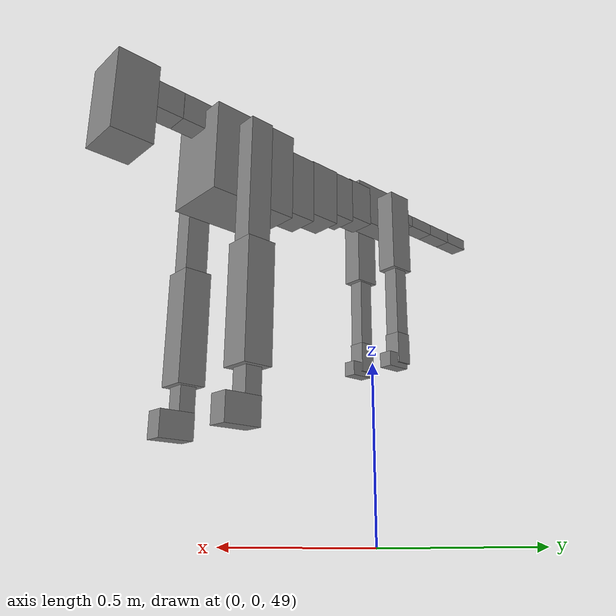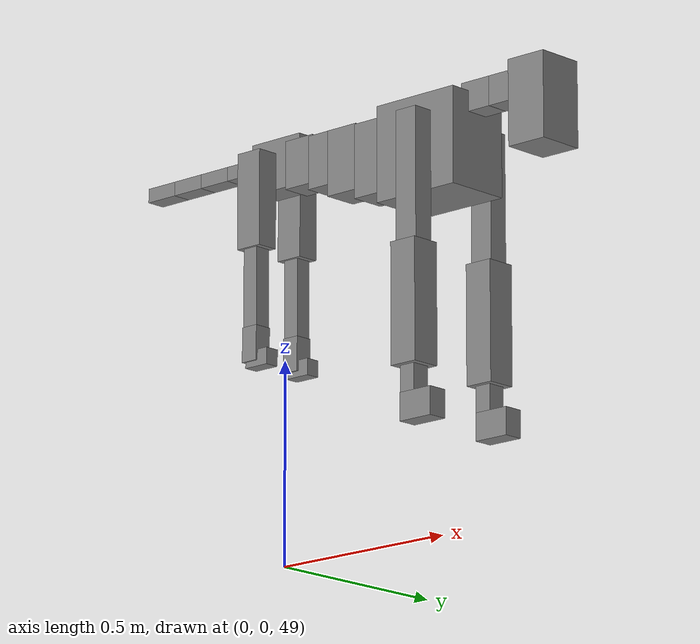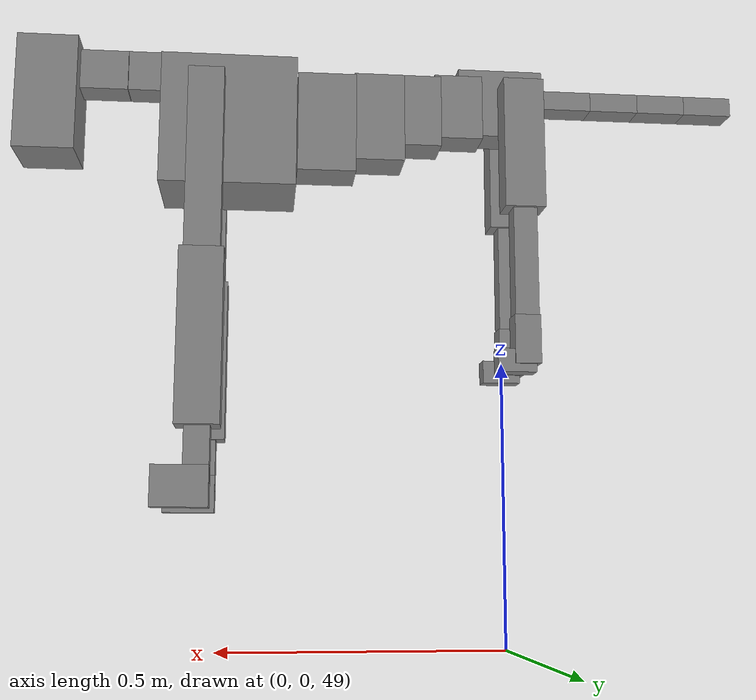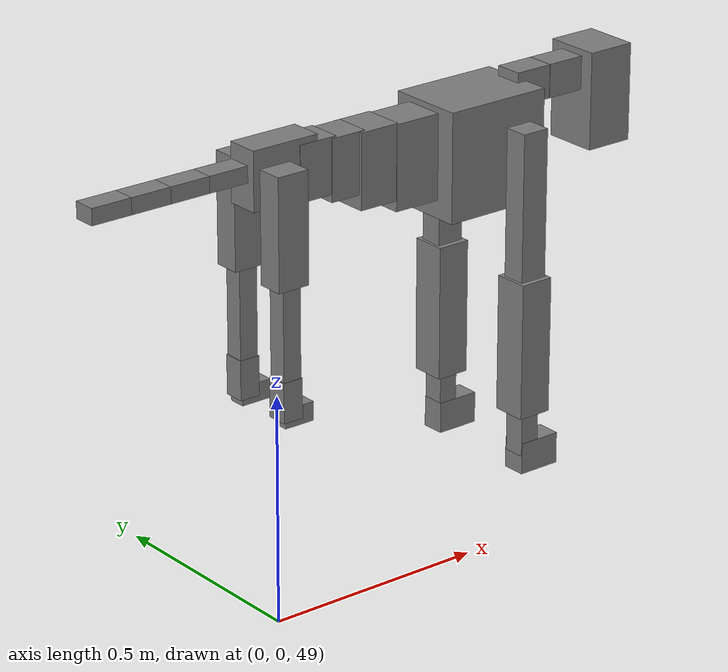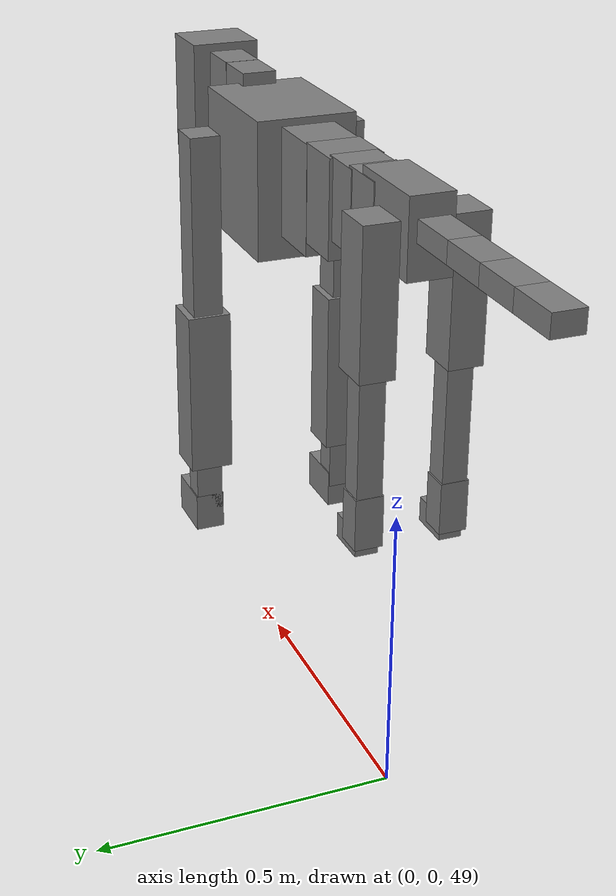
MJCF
<mujoco model="dog">

    <default>
        <joint armature="0.02" stiffness="1" damping="0.2" limited="true"/>
        <geom condim="3" friction="1 0.05 0.05" margin="0.01"/>
        <motor ctrllimited="true" ctrlrange="-1.0 1.0" forcelimited="true" gear="50"/>
    </default>

    <compiler inertiafromgeom="true" angle="radian"/>

    <option timestep="0.016" iterations="50" tolerance="1e-10" solver="Newton" jacobian="dense" cone="pyramidal"/>

    <size nconmax="20000" njmax="60000" nstack="5000000"/>
    <visual>
        <map force="0.1" zfar="30"/>
        <rgba haze="0.15 0.25 0.35 1"/>
        <quality shadowsize="2048"/>
        <global offwidth="800" offheight="800"/>
    </visual>

    <asset>
        <texture type="skybox" builtin="gradient" rgb1="0.3 0.5 0.7" rgb2="0 0 0" width="512" height="512"/>
        <texture name="texplane" type="2d" builtin="checker" rgb1=".2 .3 .4" rgb2=".1 0.15 0.2" width="512" height="512"
                 mark="cross" markrgb=".8 .8 .8"/>
        <texture name="texgeom" type="cube" builtin="flat" mark="cross" width="127" height="1278" rgb1="0.8 0.6 0.4"
                 rgb2="0.8 0.6 0.4" markrgb="1 1 1" random="0.01"/>

        <material name="matplane" reflectance="0.3" texture="texplane" texrepeat="1 1" texuniform="true"/>
        <material name="matgeom" texture="texgeom" texuniform="true" rgba="0.8 0.6 .4 1"/>
    </asset>

    <worldbody>
        <geom name="floor" pos="0 0 0" size="0 0 .25" type="plane" material="matplane" condim="3"/>

        <light directional="false" diffuse=".2 .2 .2" specular="0 0 0" pos="0 0 5" dir="0 0 -1" castshadow="false"/>
        <light mode="targetbodycom" target="torso" directional="false" diffuse=".8 .8 .8" specular="0.3 0.3 0.3"
               pos="0 0 4.0" dir="0 0 -1"/>

        <body name="root" pos="0 0 50">
            <freejoint name="root_1"/>
            <geom type="box" pos="0 0 -0.02" size="0.0774  0.0358  0.063" density="2030"/>

            <body name="spine1" pos="0.054 0 0">
                <joint name="spine1_y" axis="0 1 0" range="0 0.7" limited="true"/>
                <geom type="box" pos="0.02375 0 -0.03" size="0.04375  0.0375  0.05985" density="2030"/>

                <body name="spine2" pos="0.0612 0 0">
                    <joint name="spine2_y" axis="0 1 0" range="-0.15 0.15" limited="true"/>
                    <geom type="box" pos="0.03555  0  -0.04" size="0.04055  0.039  0.06615" density="2030"/>

                    <body name="spine3" pos="0.0730 0 0">
                        <joint name="spine3_y" axis="0 1 0" range="-0.15 0.15" limited="true"/>
                        <geom type="box" pos="0.03555  0  -0.057" size="0.04555  0.0445  0.081" density="2030"/>

                        <body name="spine4" pos="0.0780 0 0">
                            <joint name="spine4_y" axis="0 1 0" range="-0.15 0.15" limited="true"/>
                            <geom type="box" pos="0.05265  0  -0.07" size="0.05265  0.045  0.09135" density="2030"/>

                            <body name="torso" pos="0.1082 0 0">
                                <joint name="torso_y" axis="0 1 0" range="-0.15 0.15" limited="true"/>
                                <geom type="box" pos="0.11925  0  -0.085" size="0.11925  0.085  0.11745"
                                      density="2030"/>

                                <body name="neck1" pos="0.2160  0   0.0180">
                                    <joint name="neck1_y" axis="0 1 0" range="-1.2  -1" limited="true"/>
                                    <geom type="box" pos="0.0423  0  0" size="0.0423  0.03  0.036" density="2325"/>

                                    <body name="neck2" pos="0.0853  0  0">
                                        <joint name="neck2_y" axis="0 1 0" range="0.1  0" limited="true"/>
                                        <geom type="box" pos="0.0423  0  0" size="0.0423  0.03  0.036" density="2325"/>

                                        <body name="head" pos="0.0853  0  0">
                                            <joint name="head_y" axis="0 1 0" range="-0.3  -0.2" limited="true"/>
                                            <geom type="box" pos="0.0531  0  -0.055" size="0.0531  0.06  0.1044"
                                                  density="4030"/>

                                        </body>
                                    </body>
                                </body>

                                <body name="front_shoulder" pos="0.156  0   -0.0480">
                                    <joint name="front_shoulder_y" axis="0 1 0" range="-1 1.5" limited="true"/>
                                    <geom type="box" pos="0 0.13 -0.1449" size="0.0305  0.0261  0.1716" density="1158"/>
                                    <geom type="box" pos="0 -0.13 -0.1449" size="0.0305  0.0261  0.1716"
                                          density="1158"/>

                                    <body name="front_elbow" pos="0  0  -0.2899">
                                        <joint name="front_elbow_y" axis="0 1 0" range="-2 0" limited="true"/>
                                        <geom type="box" pos="0 0.13 -0.1467" size="0.0371  0.0379  0.1467"
                                              density="1081"/>
                                        <geom type="box" pos="0 -0.13 -0.1467" size="0.0371  0.0379  0.1467"
                                              density="1081"/>

                                        <body name="front_wrist" pos="0  0  -0.2935">
                                            <joint name="front_wrist_y" axis="0 1 0" range="-0.2 0" limited="true"/>
                                            <geom type="box" pos="0 0.13 -0.0392" size="0.0213  0.0237  0.0523"
                                                  density="1664"/>
                                            <geom type="box" pos="0 -0.13 -0.0392" size="0.0213  0.0237  0.0523"
                                                  density="1664"/>

                                            <body name="front_finger_end" pos="0  0  -0.0784">
                                                <joint name="front_finger_y" axis="0 1 0" range="-0.4 1"
                                                       limited="true"/>
                                                <geom type="box" pos="0.0255  0.13  -0.0188"
                                                      size="0.0468  0.0255  0.0338" density="1515"/>
                                                <geom type="box" pos="0.0255  -0.13  -0.0188"
                                                      size="0.0468  0.0255  0.0338" density="1515"/>

                                            </body>

                                        </body>
                                    </body>
                                </body>

                            </body>
                        </body>
                    </body>
                </body>
            </body>

            <body name="back_hip" pos="-0.03 0 -0.018">
                <joint name="back_hip_y" axis="0 1 0" range="-1.5 0.3" limited="true"/>
                <geom type="box" pos="0 0.07 -0.0961" size="0.0362  0.0284  0.1189" density="1154"/>
                <geom type="box" pos="0 -0.07 -0.0961" size="0.0362  0.0284  0.1189" density="1154"/>

                <body name="back_knee" pos="0  0  -0.1922">
                    <joint name="back_knee_y" axis="0 1 0" range="0 2.8" limited="true"/>
                    <geom type="box" pos="0 0.07 -0.1137" size="0.0211  0.0208  0.1292" density="1227"/>
                    <geom type="box" pos="0 -0.07 -0.1137" size="0.0211  0.0208  0.1292" density="1227"/>

                    <body name="back_ankle" pos="0  0  -0.2274">
                        <joint name="back_ankle_y" axis="0 1 0" range="-2.2 0" limited="true"/>
                        <geom type="box" pos="0 0.07 -0.0316" size="0.0229  0.0229  0.0429" density="1284"/>
                        <geom type="box" pos="0 -0.07 -0.0316" size="0.0229  0.0229  0.0429" density="1284"/>

                        <body name="back_toe_end" pos="0  0  -0.0633">
                            <joint name="back_toe_y" axis="0 1 0" range="-0.4 1" limited="true"/>
                            <geom type="box" pos="0.0187  0.07  -0.0054" size="0.0343  0.0187  0.0204" density="1515"/>
                            <geom type="box" pos="0.0187  -0.07  -0.0054" size="0.0343  0.0187  0.0204" density="1515"/>

                        </body>
                    </body>
                </body>
            </body>

            <body name="tail1" pos="-0.074 0 -0.006">
                <joint name="tail1_y" axis="0 1 0" range="-0.2 0.2" limited="true"/>
                <geom type="box" pos="-0.0536  0  0" size="0.045  0.025  0.0175" density="1587"/>

                <body name="tail2" pos="-0.09 0 0">
                    <joint name="tail2_y" axis="0 1 0" range="-0.2 0.2" limited="true"/>
                    <geom type="box" pos="-0.0536  0  0" size="0.045  0.025  0.0175" density="1587"/>

                    <body name="tail3" pos="-0.09 0 0">
                        <joint name="tail3_y" axis="0 1 0" range="-0.2 0.2" limited="true"/>
                        <geom type="box" pos="-0.0536  0  0" size="0.045  0.025  0.0175" density="1587"/>

                        <body name="tail4" pos="-0.09 0 0">
                            <joint name="tail4_y" axis="0 1 0" range="-0.2 0.2" limited="true"/>
                            <geom type="box" pos="-0.0536  0  0" size="0.045  0.025  0.0175" density="1587"/>

                        </body>
                    </body>
                </body>
            </body>
        </body>
    </worldbody>

    <actuator>
        <motor joint="spine1_y" forcerange="-150 150     "/>
        <motor joint="spine2_y" forcerange="-150 150     "/>
        <motor joint="spine3_y" forcerange="-150 150     "/>
        <motor joint="spine4_y" forcerange="-150 150     "/>
        <motor joint="torso_y" forcerange="-150 150     "/>
        <motor joint="neck1_y" forcerange="-100 100       "/>
        <motor joint="neck2_y" forcerange="-100 100       "/>
        <motor joint="head_y" forcerange="-150 150       "/>
        <motor joint="front_shoulder_y" forcerange="-110.00 163.91"/>
        <motor joint="front_elbow_y" forcerange="-198.37 177.36"/>
        <motor joint="front_wrist_y" forcerange="-64.50 125.25"/>
        <motor joint="front_finger_y" forcerange="-52.54 43.48"/>
        <motor joint="back_hip_y" forcerange="-274.68 304.25"/>
        <motor joint="back_knee_y" forcerange="-296.76 205.67"/>
        <motor joint="back_angle_y" forcerange="-199.85 66.13"/>
        <motor joint="back_toe_y" forcerange="-32.49 37.15"/>
        <motor joint="tail1_y" forcerange="-50 50     "/>
        <motor joint="tail2_y" forcerange="-50 50     "/>
        <motor joint="tail3_y" forcerange="-50 50     "/>
        <motor joint="tail4_y" forcerange="-50 50     "/>
    </actuator>
</mujoco>
